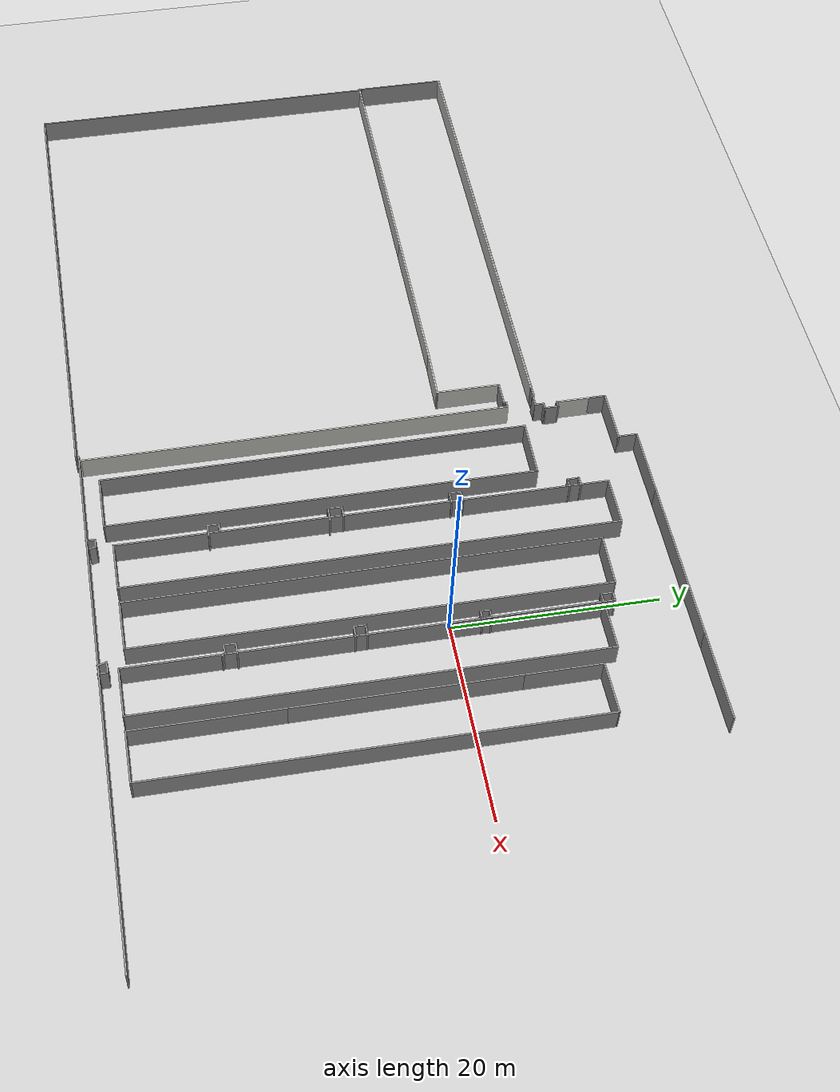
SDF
<sdf version="1.6">
 <world name="default">
  <model name="ground_plane">
   <static>1</static>
   <link name="link">
    <collision name="collision">
     <geometry><plane><normal>0 0 1</normal><size>100 100</size></plane></geometry>
     <surface><friction><ode><mu>100</mu><mu2>50</mu2></ode></friction></surface>
    </collision>
    <visual name="visual">
     <transparency>1</transparency>
     <cast_shadows>0</cast_shadows>
     <geometry><plane><normal>0 0 1</normal><size>100 100</size></plane></geometry>
     <material>
      <script><uri>file://media/materials/scripts/gazebo.material</uri><name>Gazebo/Grey</name></script>
     </material>
    </visual>
   </link>
  </model>
  <model name="AGV_smt">
   <pose>-16.0022 0.08637 0 0 -0 0</pose>
   <link name="Wall_0">
    <collision name="Wall_0_Collision">
     <geometry><box><size>30.75 0.15 2.5</size></box></geometry>
     <pose>0 0 1.25 0 -0 0</pose>
    </collision>
    <visual name="Wall_0_Visual">
     <pose>0 0 1.25 0 -0 0</pose>
     <geometry><box><size>30.75 0.15 2.5</size></box></geometry>
     <material>
      <script><uri>file://media/materials/scripts/gazebo.material</uri><name>Gazebo/Grey</name></script>
      <ambient>1 1 1 1</ambient>
     </material>
    </visual>
    <pose>-42.1422 13.3361 0 0 -0 0</pose>
   </link>
   <link name="Wall_1">
    <collision name="Wall_1_Collision">
     <geometry><box><size>0.15 0.15 2.5</size></box></geometry>
     <pose>0 0 1.25 0 -0 0</pose>
    </collision>
    <visual name="Wall_1_Visual">
     <pose>0 0 1.25 0 -0 0</pose>
     <geometry><box><size>0.15 0.15 2.5</size></box></geometry>
     <material>
      <script><uri>file://media/materials/scripts/gazebo.material</uri><name>Gazebo/Grey</name></script>
      <ambient>1 1 1 1</ambient>
     </material>
    </visual>
    <pose>-26.8422 13.3361 0 0 -0 0</pose>
   </link>
   <link name="Wall_106">
    <collision name="Wall_106_Collision">
     <geometry><box><size>5.25 0.15 2.5</size></box></geometry>
     <pose>0 0 1.25 0 -0 0</pose>
    </collision>
    <visual name="Wall_106_Visual">
     <pose>0 0 1.25 0 -0 0</pose>
     <geometry><box><size>5.25 0.15 2.5</size></box></geometry>
     <material>
      <script><uri>file://media/materials/scripts/gazebo.material</uri><name>Gazebo/Grey</name></script>
      <ambient>1 1 1 1</ambient>
     </material>
    </visual>
    <pose>26.0282 -30.5244 0 0 -0 3.14159</pose>
   </link>
   <link name="Wall_107">
    <collision name="Wall_107_Collision">
     <geometry><box><size>14.5 0.15 2.5</size></box></geometry>
     <pose>0 0 1.25 0 -0 0</pose>
    </collision>
    <visual name="Wall_107_Visual">
     <pose>0 0 1.25 0 -0 0</pose>
     <geometry><box><size>14.5 0.15 2.5</size></box></geometry>
     <material>
      <script><uri>file://media/materials/scripts/gazebo.material</uri><name>Gazebo/Grey</name></script>
      <ambient>1 1 1 1</ambient>
     </material>
    </visual>
    <pose>23.4782 -23.3494 0 0 -0 1.5708</pose>
   </link>
   <link name="Wall_108">
    <collision name="Wall_108_Collision">
     <geometry><box><size>21.5 0.15 2.5</size></box></geometry>
     <pose>0 0 1.25 0 -0 0</pose>
    </collision>
    <visual name="Wall_108_Visual">
     <pose>0 0 1.25 0 -0 0</pose>
     <geometry><box><size>21.5 0.15 2.5</size></box></geometry>
     <material>
      <script><uri>file://media/materials/scripts/gazebo.material</uri><name>Gazebo/Grey</name></script>
      <ambient>1 1 1 1</ambient>
     </material>
    </visual>
    <pose>23.4782 -5.49935 0 0 -0 1.5708</pose>
   </link>
   <link name="Wall_109">
    <collision name="Wall_109_Collision">
     <geometry><box><size>0.16 0.15 2.5</size></box></geometry>
     <pose>0 0 1.25 0 -0 0</pose>
    </collision>
    <visual name="Wall_109_Visual">
     <pose>0 0 1.25 0 -0 0</pose>
     <geometry><box><size>0.16 0.15 2.5</size></box></geometry>
     <material>
      <script><uri>file://media/materials/scripts/gazebo.material</uri><name>Gazebo/Grey</name></script>
      <ambient>1 1 1 1</ambient>
     </material>
    </visual>
    <pose>23.4832 5.17565 0 0 -0 0</pose>
   </link>
   <link name="Wall_11">
    <collision name="Wall_11_Collision">
     <geometry><box><size>0.75 0.15 2.5</size></box></geometry>
     <pose>0 0 1.25 0 -0 0</pose>
    </collision>
    <visual name="Wall_11_Visual">
     <pose>0 0 1.25 0 -0 0</pose>
     <geometry><box><size>0.75 0.15 2.5</size></box></geometry>
     <material>
      <script><uri>file://media/materials/scripts/gazebo.material</uri><name>Gazebo/Grey</name></script>
      <ambient>1 1 1 1</ambient>
     </material>
    </visual>
    <pose>-6.84217 15.4361 0 0 -0 3.14159</pose>
   </link>
   <link name="Wall_110">
    <collision name="Wall_110_Collision">
     <geometry><box><size>7.38165 0.15 2.5</size></box></geometry>
     <pose>0 0 1.25 0 -0 0</pose>
    </collision>
    <visual name="Wall_110_Visual">
     <pose>0 0 1.25 0 -0 0</pose>
     <geometry><box><size>7.38165 0.15 2.5</size></box></geometry>
     <material>
      <script><uri>file://media/materials/scripts/gazebo.material</uri><name>Gazebo/Grey</name></script>
      <ambient>1 1 1 1</ambient>
     </material>
    </visual>
    <pose>23.4882 8.79147 0 0 -0 1.5708</pose>
   </link>
   <link name="Wall_111">
    <collision name="Wall_111_Collision">
     <geometry><box><size>5.20841 0.15 2.5</size></box></geometry>
     <pose>0 0 1.25 0 -0 0</pose>
    </collision>
    <visual name="Wall_111_Visual">
     <pose>0 0 1.25 0 -0 0</pose>
     <geometry><box><size>5.20841 0.15 2.5</size></box></geometry>
     <material>
      <script><uri>file://media/materials/scripts/gazebo.material</uri><name>Gazebo/Grey</name></script>
      <ambient>1 1 1 1</ambient>
     </material>
    </visual>
    <pose>26.0173 12.4536 0 0 -0 0.010491</pose>
   </link>
   <link name="Wall_112">
    <collision name="Wall_112_Collision">
     <geometry><box><size>43.1317 0.15 2.5</size></box></geometry>
     <pose>0 0 1.25 0 -0 0</pose>
    </collision>
    <visual name="Wall_112_Visual">
     <pose>0 0 1.25 0 -0 0</pose>
     <geometry><box><size>43.1317 0.15 2.5</size></box></geometry>
     <material>
      <script><uri>file://media/materials/scripts/gazebo.material</uri><name>Gazebo/Grey</name></script>
      <ambient>1 1 1 1</ambient>
     </material>
    </visual>
    <pose>28.5596 -9.03046 0 0 0 -1.57018</pose>
   </link>
   <link name="Wall_115">
    <collision name="Wall_115_Collision">
     <geometry><box><size>5.25 0.15 2.5</size></box></geometry>
     <pose>0 0 1.25 0 -0 0</pose>
    </collision>
    <visual name="Wall_115_Visual">
     <pose>0 0 1.25 0 -0 0</pose>
     <geometry><box><size>5.25 0.15 2.5</size></box></geometry>
     <material>
      <script><uri>file://media/materials/scripts/gazebo.material</uri><name>Gazebo/Grey</name></script>
      <ambient>1 1 1 1</ambient>
     </material>
    </visual>
    <pose>19.4138 14.0435 0 0 -0 0</pose>
   </link>
   <link name="Wall_116">
    <collision name="Wall_116_Collision">
     <geometry><box><size>44.7152 0.15 2.5</size></box></geometry>
     <pose>0 0 1.25 0 -0 0</pose>
    </collision>
    <visual name="Wall_116_Visual">
     <pose>0 0 1.25 0 -0 0</pose>
     <geometry><box><size>44.7152 0.15 2.5</size></box></geometry>
     <material>
      <script><uri>file://media/materials/scripts/gazebo.material</uri><name>Gazebo/Grey</name></script>
      <ambient>1 1 1 1</ambient>
     </material>
    </visual>
    <pose>21.9638 -8.23909 0 0 0 -1.5708</pose>
   </link>
   <link name="Wall_117">
    <collision name="Wall_117_Collision">
     <geometry><box><size>5.09266 0.15 2.5</size></box></geometry>
     <pose>0 0 1.25 0 -0 0</pose>
    </collision>
    <visual name="Wall_117_Visual">
     <pose>0 0 1.25 0 -0 0</pose>
     <geometry><box><size>5.09266 0.15 2.5</size></box></geometry>
     <material>
      <script><uri>file://media/materials/scripts/gazebo.material</uri><name>Gazebo/Grey</name></script>
      <ambient>1 1 1 1</ambient>
     </material>
    </visual>
    <pose>19.4925 -30.5521 0 0 0 -3.13628</pose>
   </link>
   <link name="Wall_118">
    <collision name="Wall_118_Collision">
     <geometry><box><size>44.7152 0.15 2.5</size></box></geometry>
     <pose>0 0 1.25 0 -0 0</pose>
    </collision>
    <visual name="Wall_118_Visual">
     <pose>0 0 1.25 0 -0 0</pose>
     <geometry><box><size>44.7152 0.15 2.5</size></box></geometry>
     <material>
      <script><uri>file://media/materials/scripts/gazebo.material</uri><name>Gazebo/Grey</name></script>
      <ambient>1 1 1 1</ambient>
     </material>
    </visual>
    <pose>17.0179 -8.26533 0 0 -0 1.57094</pose>
   </link>
   <link name="Wall_12">
    <collision name="Wall_12_Collision">
     <geometry><box><size>3.5 0.15 2.5</size></box></geometry>
     <pose>0 0 1.25 0 -0 0</pose>
    </collision>
    <visual name="Wall_12_Visual">
     <pose>0 0 1.25 0 -0 0</pose>
     <geometry><box><size>3.5 0.15 2.5</size></box></geometry>
     <material>
      <script><uri>file://media/materials/scripts/gazebo.material</uri><name>Gazebo/CeilingTiled</name></script>
      <ambient>1 1 1 1</ambient>
     </material>
    </visual>
    <pose>-7.14217 17.1111 0 0 -0 1.5708</pose>
   </link>
   <link name="Wall_120">
    <collision name="Wall_120_Collision">
     <geometry><box><size>1.25 0.15 2.5</size></box></geometry>
     <pose>0 0 1.25 0 -0 0</pose>
    </collision>
    <visual name="Wall_120_Visual">
     <pose>0 0 1.25 0 -0 0</pose>
     <geometry><box><size>1.25 0.15 2.5</size></box></geometry>
     <material>
      <script><uri>file://media/materials/scripts/gazebo.material</uri><name>Gazebo/Grey</name></script>
      <ambient>1 1 1 1</ambient>
     </material>
    </visual>
    <pose>17.0146 14.5673 0 0 -0 1.5708</pose>
   </link>
   <link name="Wall_121">
    <collision name="Wall_121_Collision">
     <geometry><box><size>1 0.15 2.5</size></box></geometry>
     <pose>0 0 1.25 0 -0 0</pose>
    </collision>
    <visual name="Wall_121_Visual">
     <pose>0 0 1.25 0 -0 0</pose>
     <geometry><box><size>1 0.15 2.5</size></box></geometry>
     <material>
      <script><uri>file://media/materials/scripts/gazebo.material</uri><name>Gazebo/Grey</name></script>
      <ambient>1 1 1 1</ambient>
     </material>
    </visual>
    <pose>16.5896 15.1173 0 0 -0 3.14159</pose>
   </link>
   <link name="Wall_122">
    <collision name="Wall_122_Collision">
     <geometry><box><size>1.25 0.15 2.5</size></box></geometry>
     <pose>0 0 1.25 0 -0 0</pose>
    </collision>
    <visual name="Wall_122_Visual">
     <pose>0 0 1.25 0 -0 0</pose>
     <geometry><box><size>1.25 0.15 2.5</size></box></geometry>
     <material>
      <script><uri>file://media/materials/scripts/gazebo.material</uri><name>Gazebo/Grey</name></script>
      <ambient>1 1 1 1</ambient>
     </material>
    </visual>
    <pose>16.1646 14.5673 0 0 0 -1.5708</pose>
   </link>
   <link name="Wall_123">
    <collision name="Wall_123_Collision">
     <geometry><box><size>1 0.15 2.5</size></box></geometry>
     <pose>0 0 1.25 0 -0 0</pose>
    </collision>
    <visual name="Wall_123_Visual">
     <pose>0 0 1.25 0 -0 0</pose>
     <geometry><box><size>1 0.15 2.5</size></box></geometry>
     <material>
      <script><uri>file://media/materials/scripts/gazebo.material</uri><name>Gazebo/Grey</name></script>
      <ambient>1 1 1 1</ambient>
     </material>
    </visual>
    <pose>16.5896 14.0173 0 0 -0 0</pose>
   </link>
   <link name="Wall_125">
    <collision name="Wall_125_Collision">
     <geometry><box><size>1 0.15 2.5</size></box></geometry>
     <pose>0 0 1.25 0 -0 0</pose>
    </collision>
    <visual name="Wall_125_Visual">
     <pose>0 0 1.25 0 -0 0</pose>
     <geometry><box><size>1 0.15 2.5</size></box></geometry>
     <material>
      <script><uri>file://media/materials/scripts/gazebo.material</uri><name>Gazebo/Grey</name></script>
      <ambient>1 1 1 1</ambient>
     </material>
    </visual>
    <pose>16.6409 3.50389 0 0 -0 3.14159</pose>
   </link>
   <link name="Wall_126">
    <collision name="Wall_126_Collision">
     <geometry><box><size>1 0.15 2.5</size></box></geometry>
     <pose>0 0 1.25 0 -0 0</pose>
    </collision>
    <visual name="Wall_126_Visual">
     <pose>0 0 1.25 0 -0 0</pose>
     <geometry><box><size>1 0.15 2.5</size></box></geometry>
     <material>
      <script><uri>file://media/materials/scripts/gazebo.material</uri><name>Gazebo/Grey</name></script>
      <ambient>1 1 1 1</ambient>
     </material>
    </visual>
    <pose>16.2159 3.07889 0 0 0 -1.5708</pose>
   </link>
   <link name="Wall_127">
    <collision name="Wall_127_Collision">
     <geometry><box><size>1 0.15 2.5</size></box></geometry>
     <pose>0 0 1.25 0 -0 0</pose>
    </collision>
    <visual name="Wall_127_Visual">
     <pose>0 0 1.25 0 -0 0</pose>
     <geometry><box><size>1 0.15 2.5</size></box></geometry>
     <material>
      <script><uri>file://media/materials/scripts/gazebo.material</uri><name>Gazebo/Grey</name></script>
      <ambient>1 1 1 1</ambient>
     </material>
    </visual>
    <pose>16.6409 2.65389 0 0 -0 0</pose>
   </link>
   <link name="Wall_129">
    <collision name="Wall_129_Collision">
     <geometry><box><size>1.25 0.15 2.5</size></box></geometry>
     <pose>0 0 1.25 0 -0 0</pose>
    </collision>
    <visual name="Wall_129_Visual">
     <pose>0 0 1.25 0 -0 0</pose>
     <geometry><box><size>1.25 0.15 2.5</size></box></geometry>
     <material>
      <script><uri>file://media/materials/scripts/gazebo.material</uri><name>Gazebo/Grey</name></script>
      <ambient>1 1 1 1</ambient>
     </material>
    </visual>
    <pose>16.5293 -7.97039 0 0 -0 3.14159</pose>
   </link>
   <link name="Wall_130">
    <collision name="Wall_130_Collision">
     <geometry><box><size>1.25 0.15 2.5</size></box></geometry>
     <pose>0 0 1.25 0 -0 0</pose>
    </collision>
    <visual name="Wall_130_Visual">
     <pose>0 0 1.25 0 -0 0</pose>
     <geometry><box><size>1.25 0.15 2.5</size></box></geometry>
     <material>
      <script><uri>file://media/materials/scripts/gazebo.material</uri><name>Gazebo/Grey</name></script>
      <ambient>1 1 1 1</ambient>
     </material>
    </visual>
    <pose>15.9793 -8.52039 0 0 0 -1.5708</pose>
   </link>
   <link name="Wall_131">
    <collision name="Wall_131_Collision">
     <geometry><box><size>1.25 0.15 2.5</size></box></geometry>
     <pose>0 0 1.25 0 -0 0</pose>
    </collision>
    <visual name="Wall_131_Visual">
     <pose>0 0 1.25 0 -0 0</pose>
     <geometry><box><size>1.25 0.15 2.5</size></box></geometry>
     <material>
      <script><uri>file://media/materials/scripts/gazebo.material</uri><name>Gazebo/Grey</name></script>
      <ambient>1 1 1 1</ambient>
     </material>
    </visual>
    <pose>16.5293 -9.07039 0 0 -0 0</pose>
   </link>
   <link name="Wall_133">
    <collision name="Wall_133_Collision">
     <geometry><box><size>1.25 0.15 2.5</size></box></geometry>
     <pose>0 0 1.25 0 -0 0</pose>
    </collision>
    <visual name="Wall_133_Visual">
     <pose>0 0 1.25 0 -0 0</pose>
     <geometry><box><size>1.25 0.15 2.5</size></box></geometry>
     <material>
      <script><uri>file://media/materials/scripts/gazebo.material</uri><name>Gazebo/Grey</name></script>
      <ambient>1 1 1 1</ambient>
     </material>
    </visual>
    <pose>16.606 -19.8824 0 0 -0 3.14159</pose>
   </link>
   <link name="Wall_134">
    <collision name="Wall_134_Collision">
     <geometry><box><size>1.25 0.15 2.5</size></box></geometry>
     <pose>0 0 1.25 0 -0 0</pose>
    </collision>
    <visual name="Wall_134_Visual">
     <pose>0 0 1.25 0 -0 0</pose>
     <geometry><box><size>1.25 0.15 2.5</size></box></geometry>
     <material>
      <script><uri>file://media/materials/scripts/gazebo.material</uri><name>Gazebo/Grey</name></script>
      <ambient>1 1 1 1</ambient>
     </material>
    </visual>
    <pose>16.056 -20.4324 0 0 0 -1.5708</pose>
   </link>
   <link name="Wall_135">
    <collision name="Wall_135_Collision">
     <geometry><box><size>1 0.15 2.5</size></box></geometry>
     <pose>0 0 1.25 0 -0 0</pose>
    </collision>
    <visual name="Wall_135_Visual">
     <pose>0 0 1.25 0 -0 0</pose>
     <geometry><box><size>1 0.15 2.5</size></box></geometry>
     <material>
      <script><uri>file://media/materials/scripts/gazebo.material</uri><name>Gazebo/Grey</name></script>
      <ambient>1 1 1 1</ambient>
     </material>
    </visual>
    <pose>16.481 -20.9824 0 0 -0 0</pose>
   </link>
   <link name="Wall_136">
    <collision name="Wall_136_Collision">
     <geometry><box><size>0.5 0.15 2.5</size></box></geometry>
     <pose>0 0 1.25 0 -0 0</pose>
    </collision>
    <visual name="Wall_136_Visual">
     <pose>0 0 1.25 0 -0 0</pose>
     <geometry><box><size>0.5 0.15 2.5</size></box></geometry>
     <material>
      <script><uri>file://media/materials/scripts/gazebo.material</uri><name>Gazebo/Grey</name></script>
      <ambient>1 1 1 1</ambient>
     </material>
    </visual>
    <pose>17.0298 -21.1061 0 0 0 -0.785398</pose>
   </link>
   <link name="Wall_138">
    <collision name="Wall_138_Collision">
     <geometry><box><size>5.24416 0.15 2.5</size></box></geometry>
     <pose>0 0 1.25 0 -0 0</pose>
    </collision>
    <visual name="Wall_138_Visual">
     <pose>0 0 1.25 0 -0 0</pose>
     <geometry><box><size>5.24416 0.15 2.5</size></box></geometry>
     <material>
      <script><uri>file://media/materials/scripts/gazebo.material</uri><name>Gazebo/Grey</name></script>
      <ambient>1 1 1 1</ambient>
     </material>
    </visual>
    <pose>12.5085 15.6745 0 0 0 -0.02094</pose>
   </link>
   <link name="Wall_139">
    <collision name="Wall_139_Collision">
     <geometry><box><size>45.6529 0.15 2.5</size></box></geometry>
     <pose>0 0 1.25 0 -0 0</pose>
    </collision>
    <visual name="Wall_139_Visual">
     <pose>0 0 1.25 0 -0 0</pose>
     <geometry><box><size>45.6529 0.15 2.5</size></box></geometry>
     <material>
      <script><uri>file://media/materials/scripts/gazebo.material</uri><name>Gazebo/Grey</name></script>
      <ambient>1 1 1 1</ambient>
     </material>
    </visual>
    <pose>15.0467 -7.13023 0 0 0 -1.57116</pose>
   </link>
   <link name="Wall_14">
    <collision name="Wall_14_Collision">
     <geometry><box><size>1.75 0.15 2.5</size></box></geometry>
     <pose>0 0 1.25 0 -0 0</pose>
    </collision>
    <visual name="Wall_14_Visual">
     <pose>0 0 1.25 0 -0 0</pose>
     <geometry><box><size>1.75 0.15 2.5</size></box></geometry>
     <material>
      <script><uri>file://media/materials/scripts/gazebo.material</uri><name>Gazebo/Grey</name></script>
      <ambient>1 1 1 1</ambient>
     </material>
    </visual>
    <pose>-7.14217 19.5861 0 0 -0 1.5708</pose>
   </link>
   <link name="Wall_140">
    <collision name="Wall_140_Collision">
     <geometry><box><size>5.25 0.15 2.5</size></box></geometry>
     <pose>0 0 1.25 0 -0 0</pose>
    </collision>
    <visual name="Wall_140_Visual">
     <pose>0 0 1.25 0 -0 0</pose>
     <geometry><box><size>5.25 0.15 2.5</size></box></geometry>
     <material>
      <script><uri>file://media/materials/scripts/gazebo.material</uri><name>Gazebo/Grey</name></script>
      <ambient>1 1 1 1</ambient>
     </material>
    </visual>
    <pose>12.4884 -29.8817 0 0 -0 3.14159</pose>
   </link>
   <link name="Wall_141">
    <collision name="Wall_141_Collision">
     <geometry><box><size>45.75 0.15 2.5</size></box></geometry>
     <pose>0 0 1.25 0 -0 0</pose>
    </collision>
    <visual name="Wall_141_Visual">
     <pose>0 0 1.25 0 -0 0</pose>
     <geometry><box><size>45.75 0.15 2.5</size></box></geometry>
     <material>
      <script><uri>file://media/materials/scripts/gazebo.material</uri><name>Gazebo/Grey</name></script>
      <ambient>1 1 1 1</ambient>
     </material>
    </visual>
    <pose>9.93842 -7.07681 0 0 -0 1.5708</pose>
   </link>
   <link name="Wall_143">
    <collision name="Wall_143_Collision">
     <geometry><box><size>5.0499 0.15 2.5</size></box></geometry>
     <pose>0 0 1.25 0 -0 0</pose>
    </collision>
    <visual name="Wall_143_Visual">
     <pose>0 0 1.25 0 -0 0</pose>
     <geometry><box><size>5.0499 0.15 2.5</size></box></geometry>
     <material>
      <script><uri>file://media/materials/scripts/gazebo.material</uri><name>Gazebo/Grey</name></script>
      <ambient>1 1 1 1</ambient>
     </material>
    </visual>
    <pose>5.86336 18.025 0 0 -0 0</pose>
   </link>
   <link name="Wall_144">
    <collision name="Wall_144_Collision">
     <geometry><box><size>48.0563 0.15 2.5</size></box></geometry>
     <pose>0 0 1.25 0 -0 0</pose>
    </collision>
    <visual name="Wall_144_Visual">
     <pose>0 0 1.25 0 -0 0</pose>
     <geometry><box><size>48.0563 0.15 2.5</size></box></geometry>
     <material>
      <script><uri>file://media/materials/scripts/gazebo.material</uri><name>Gazebo/Grey</name></script>
      <ambient>1 1 1 1</ambient>
     </material>
    </visual>
    <pose>8.30876 -5.94292 0 0 0 -1.57099</pose>
   </link>
   <link name="Wall_145">
    <collision name="Wall_145_Collision">
     <geometry><box><size>5.0499 0.15 2.5</size></box></geometry>
     <pose>0 0 1.25 0 -0 0</pose>
    </collision>
    <visual name="Wall_145_Visual">
     <pose>0 0 1.25 0 -0 0</pose>
     <geometry><box><size>5.0499 0.15 2.5</size></box></geometry>
     <material>
      <script><uri>file://media/materials/scripts/gazebo.material</uri><name>Gazebo/Grey</name></script>
      <ambient>1 1 1 1</ambient>
     </material>
    </visual>
    <pose>5.85426 -29.9016 0 0 -0 3.14159</pose>
   </link>
   <link name="Wall_146">
    <collision name="Wall_146_Collision">
     <geometry><box><size>48.0563 0.15 2.5</size></box></geometry>
     <pose>0 0 1.25 0 -0 0</pose>
    </collision>
    <visual name="Wall_146_Visual">
     <pose>0 0 1.25 0 -0 0</pose>
     <geometry><box><size>48.0563 0.15 2.5</size></box></geometry>
     <material>
      <script><uri>file://media/materials/scripts/gazebo.material</uri><name>Gazebo/Grey</name></script>
      <ambient>1 1 1 1</ambient>
     </material>
    </visual>
    <pose>3.40886 -5.94292 0 0 -0 1.57061</pose>
   </link>
   <link name="Wall_148">
    <collision name="Wall_148_Collision">
     <geometry><box><size>1 0.15 2.5</size></box></geometry>
     <pose>0 0 1.25 0 -0 0</pose>
    </collision>
    <visual name="Wall_148_Visual">
     <pose>0 0 1.25 0 -0 0</pose>
     <geometry><box><size>1 0.15 2.5</size></box></geometry>
     <material>
      <script><uri>file://media/materials/scripts/gazebo.material</uri><name>Gazebo/Grey</name></script>
      <ambient>1 1 1 1</ambient>
     </material>
    </visual>
    <pose>3.04093 15.2638 0 0 -0 3.14159</pose>
   </link>
   <link name="Wall_149">
    <collision name="Wall_149_Collision">
     <geometry><box><size>1.25 0.15 2.5</size></box></geometry>
     <pose>0 0 1.25 0 -0 0</pose>
    </collision>
    <visual name="Wall_149_Visual">
     <pose>0 0 1.25 0 -0 0</pose>
     <geometry><box><size>1.25 0.15 2.5</size></box></geometry>
     <material>
      <script><uri>file://media/materials/scripts/gazebo.material</uri><name>Gazebo/Grey</name></script>
      <ambient>1 1 1 1</ambient>
     </material>
    </visual>
    <pose>2.61593 14.7138 0 0 0 -1.5708</pose>
   </link>
   <link name="Wall_15">
    <collision name="Wall_15_Collision">
     <geometry><box><size>5.5 0.15 2.5</size></box></geometry>
     <pose>0 0 1.25 0 -0 0</pose>
    </collision>
    <visual name="Wall_15_Visual">
     <pose>0 0 1.25 0 -0 0</pose>
     <geometry><box><size>5.5 0.15 2.5</size></box></geometry>
     <material>
      <script><uri>file://media/materials/scripts/gazebo.material</uri><name>Gazebo/Grey</name></script>
      <ambient>1 1 1 1</ambient>
     </material>
    </visual>
    <pose>-4.46717 20.3861 0 0 -0 0</pose>
   </link>
   <link name="Wall_150">
    <collision name="Wall_150_Collision">
     <geometry><box><size>1 0.15 2.5</size></box></geometry>
     <pose>0 0 1.25 0 -0 0</pose>
    </collision>
    <visual name="Wall_150_Visual">
     <pose>0 0 1.25 0 -0 0</pose>
     <geometry><box><size>1 0.15 2.5</size></box></geometry>
     <material>
      <script><uri>file://media/materials/scripts/gazebo.material</uri><name>Gazebo/Grey</name></script>
      <ambient>1 1 1 1</ambient>
     </material>
    </visual>
    <pose>3.04093 14.1638 0 0 -0 0</pose>
   </link>
   <link name="Wall_152">
    <collision name="Wall_152_Collision">
     <geometry><box><size>1.25 0.15 2.5</size></box></geometry>
     <pose>0 0 1.25 0 -0 0</pose>
    </collision>
    <visual name="Wall_152_Visual">
     <pose>0 0 1.25 0 -0 0</pose>
     <geometry><box><size>1.25 0.15 2.5</size></box></geometry>
     <material>
      <script><uri>file://media/materials/scripts/gazebo.material</uri><name>Gazebo/Grey</name></script>
      <ambient>1 1 1 1</ambient>
     </material>
    </visual>
    <pose>3.00565 3.62322 0 0 -0 3.14159</pose>
   </link>
   <link name="Wall_153">
    <collision name="Wall_153_Collision">
     <geometry><box><size>1.25 0.15 2.5</size></box></geometry>
     <pose>0 0 1.25 0 -0 0</pose>
    </collision>
    <visual name="Wall_153_Visual">
     <pose>0 0 1.25 0 -0 0</pose>
     <geometry><box><size>1.25 0.15 2.5</size></box></geometry>
     <material>
      <script><uri>file://media/materials/scripts/gazebo.material</uri><name>Gazebo/Grey</name></script>
      <ambient>1 1 1 1</ambient>
     </material>
    </visual>
    <pose>2.45565 3.07322 0 0 0 -1.5708</pose>
   </link>
   <link name="Wall_154">
    <collision name="Wall_154_Collision">
     <geometry><box><size>1.25 0.15 2.5</size></box></geometry>
     <pose>0 0 1.25 0 -0 0</pose>
    </collision>
    <visual name="Wall_154_Visual">
     <pose>0 0 1.25 0 -0 0</pose>
     <geometry><box><size>1.25 0.15 2.5</size></box></geometry>
     <material>
      <script><uri>file://media/materials/scripts/gazebo.material</uri><name>Gazebo/Grey</name></script>
      <ambient>1 1 1 1</ambient>
     </material>
    </visual>
    <pose>3.00565 2.52322 0 0 -0 0</pose>
   </link>
   <link name="Wall_156">
    <collision name="Wall_156_Collision">
     <geometry><box><size>1.25 0.15 2.5</size></box></geometry>
     <pose>0 0 1.25 0 -0 0</pose>
    </collision>
    <visual name="Wall_156_Visual">
     <pose>0 0 1.25 0 -0 0</pose>
     <geometry><box><size>1.25 0.15 2.5</size></box></geometry>
     <material>
      <script><uri>file://media/materials/scripts/gazebo.material</uri><name>Gazebo/Grey</name></script>
      <ambient>1 1 1 1</ambient>
     </material>
    </visual>
    <pose>2.927 -7.94972 0 0 -0 3.14159</pose>
   </link>
   <link name="Wall_157">
    <collision name="Wall_157_Collision">
     <geometry><box><size>1.5 0.15 2.5</size></box></geometry>
     <pose>0 0 1.25 0 -0 0</pose>
    </collision>
    <visual name="Wall_157_Visual">
     <pose>0 0 1.25 0 -0 0</pose>
     <geometry><box><size>1.5 0.15 2.5</size></box></geometry>
     <material>
      <script><uri>file://media/materials/scripts/gazebo.material</uri><name>Gazebo/Grey</name></script>
      <ambient>1 1 1 1</ambient>
     </material>
    </visual>
    <pose>2.377 -8.62472 0 0 0 -1.5708</pose>
   </link>
   <link name="Wall_158">
    <collision name="Wall_158_Collision">
     <geometry><box><size>1.5 0.15 2.5</size></box></geometry>
     <pose>0 0 1.25 0 -0 0</pose>
    </collision>
    <visual name="Wall_158_Visual">
     <pose>0 0 1.25 0 -0 0</pose>
     <geometry><box><size>1.5 0.15 2.5</size></box></geometry>
     <material>
      <script><uri>file://media/materials/scripts/gazebo.material</uri><name>Gazebo/Grey</name></script>
      <ambient>1 1 1 1</ambient>
     </material>
    </visual>
    <pose>3.052 -9.29972 0 0 -0 0</pose>
   </link>
   <link name="Wall_16">
    <collision name="Wall_16_Collision">
     <geometry><box><size>2 0.15 2.5</size></box></geometry>
     <pose>0 0 1.25 0 -0 0</pose>
    </collision>
    <visual name="Wall_16_Visual">
     <pose>0 0 1.25 0 -0 0</pose>
     <geometry><box><size>2 0.15 2.5</size></box></geometry>
     <material>
      <script><uri>file://media/materials/scripts/gazebo.material</uri><name>Gazebo/Grey</name></script>
      <ambient>1 1 1 1</ambient>
     </material>
    </visual>
    <pose>-1.79217 21.3111 0 0 -0 1.5708</pose>
   </link>
   <link name="Wall_160">
    <collision name="Wall_160_Collision">
     <geometry><box><size>1 0.15 2.5</size></box></geometry>
     <pose>0 0 1.25 0 -0 0</pose>
    </collision>
    <visual name="Wall_160_Visual">
     <pose>0 0 1.25 0 -0 0</pose>
     <geometry><box><size>1 0.15 2.5</size></box></geometry>
     <material>
      <script><uri>file://media/materials/scripts/gazebo.material</uri><name>Gazebo/Grey</name></script>
      <ambient>1 1 1 1</ambient>
     </material>
    </visual>
    <pose>2.95939 -19.7967 0 0 -0 3.14159</pose>
   </link>
   <link name="Wall_161">
    <collision name="Wall_161_Collision">
     <geometry><box><size>1.25 0.15 2.5</size></box></geometry>
     <pose>0 0 1.25 0 -0 0</pose>
    </collision>
    <visual name="Wall_161_Visual">
     <pose>0 0 1.25 0 -0 0</pose>
     <geometry><box><size>1.25 0.15 2.5</size></box></geometry>
     <material>
      <script><uri>file://media/materials/scripts/gazebo.material</uri><name>Gazebo/Grey</name></script>
      <ambient>1 1 1 1</ambient>
     </material>
    </visual>
    <pose>2.53438 -20.3467 0 0 0 -1.5708</pose>
   </link>
   <link name="Wall_162">
    <collision name="Wall_162_Collision">
     <geometry><box><size>1.25 0.15 2.5</size></box></geometry>
     <pose>0 0 1.25 0 -0 0</pose>
    </collision>
    <visual name="Wall_162_Visual">
     <pose>0 0 1.25 0 -0 0</pose>
     <geometry><box><size>1.25 0.15 2.5</size></box></geometry>
     <material>
      <script><uri>file://media/materials/scripts/gazebo.material</uri><name>Gazebo/Grey</name></script>
      <ambient>1 1 1 1</ambient>
     </material>
    </visual>
    <pose>3.08439 -20.8967 0 0 -0 0</pose>
   </link>
   <link name="Wall_166">
    <collision name="Wall_166_Collision">
     <geometry><box><size>5.86862 0.15 2.5</size></box></geometry>
     <pose>0 0 1.25 0 -0 0</pose>
    </collision>
    <visual name="Wall_166_Visual">
     <pose>0 0 1.25 0 -0 0</pose>
     <geometry><box><size>5.86862 0.15 2.5</size></box></geometry>
     <material>
      <script><uri>file://media/materials/scripts/gazebo.material</uri><name>Gazebo/Grey</name></script>
      <ambient>1 1 1 1</ambient>
     </material>
    </visual>
    <pose>-1.7875 11.534 0 0 0 -0.012572</pose>
   </link>
   <link name="Wall_167">
    <collision name="Wall_167_Collision">
     <geometry><box><size>42.2453 0.15 2.5</size></box></geometry>
     <pose>0 0 1.25 0 -0 0</pose>
    </collision>
    <visual name="Wall_167_Visual">
     <pose>0 0 1.25 0 -0 0</pose>
     <geometry><box><size>42.2453 0.15 2.5</size></box></geometry>
     <material>
      <script><uri>file://media/materials/scripts/gazebo.material</uri><name>Gazebo/Grey</name></script>
      <ambient>1 1 1 1</ambient>
     </material>
    </visual>
    <pose>1.06981 -9.54955 0 0 0 -1.57277</pose>
   </link>
   <link name="Wall_168">
    <collision name="Wall_168_Collision">
     <geometry><box><size>5.75 0.15 2.5</size></box></geometry>
     <pose>0 0 1.25 0 -0 0</pose>
    </collision>
    <visual name="Wall_168_Visual">
     <pose>0 0 1.25 0 -0 0</pose>
     <geometry><box><size>5.75 0.15 2.5</size></box></geometry>
     <material>
      <script><uri>file://media/materials/scripts/gazebo.material</uri><name>Gazebo/Grey</name></script>
      <ambient>1 1 1 1</ambient>
     </material>
    </visual>
    <pose>-1.77165 -30.5972 0 0 -0 3.14159</pose>
   </link>
   <link name="Wall_169">
    <collision name="Wall_169_Collision">
     <geometry><box><size>42.3582 0.15 2.5</size></box></geometry>
     <pose>0 0 1.25 0 -0 0</pose>
    </collision>
    <visual name="Wall_169_Visual">
     <pose>0 0 1.25 0 -0 0</pose>
     <geometry><box><size>42.3582 0.15 2.5</size></box></geometry>
     <material>
      <script><uri>file://media/materials/scripts/gazebo.material</uri><name>Gazebo/Grey</name></script>
      <ambient>1 1 1 1</ambient>
     </material>
    </visual>
    <pose>-4.59598 -9.52309 0 0 -0 1.57195</pose>
   </link>
   <link name="Wall_17">
    <collision name="Wall_17_Collision">
     <geometry><box><size>7.25 0.15 2.5</size></box></geometry>
     <pose>0 0 1.25 0 -0 0</pose>
    </collision>
    <visual name="Wall_17_Visual">
     <pose>0 0 1.25 0 -0 0</pose>
     <geometry><box><size>7.25 0.15 2.5</size></box></geometry>
     <material>
      <script><uri>file://media/materials/scripts/gazebo.material</uri><name>Gazebo/Grey</name></script>
      <ambient>1 1 1 1</ambient>
     </material>
    </visual>
    <pose>1.75783 22.2361 0 0 -0 0</pose>
   </link>
   <link name="Wall_171">
    <collision name="Wall_171_Collision">
     <geometry><box><size>53.5 0.15 2.5</size></box></geometry>
     <pose>0 0 1.25 0 -0 0</pose>
    </collision>
    <visual name="Wall_171_Visual">
     <pose>0 0 1.25 0 -0 0</pose>
     <geometry><box><size>53.5 0.15 2.5</size></box></geometry>
     <material>
      <script><uri>file://media/materials/scripts/gazebo.material</uri><name>Gazebo/Grey</name></script>
      <ambient>1 1 1 1</ambient>
     </material>
    </visual>
    <pose>18.8532 -32.3575 0 0 -0 0</pose>
   </link>
   <link name="Wall_19">
    <collision name="Wall_19_Collision">
     <geometry><box><size>16.75 0.15 2.5</size></box></geometry>
     <pose>0 0 1.25 0 -0 0</pose>
    </collision>
    <visual name="Wall_19_Visual">
     <pose>0 0 1.25 0 -0 0</pose>
     <geometry><box><size>16.75 0.15 2.5</size></box></geometry>
     <material>
      <script><uri>file://media/materials/scripts/gazebo.material</uri><name>Gazebo/Grey</name></script>
      <ambient>1 1 1 1</ambient>
     </material>
    </visual>
    <pose>13.6078 22.2361 0 0 -0 0</pose>
   </link>
   <link name="Wall_191">
    <collision name="Wall_191_Collision">
     <geometry><box><size>1 0.15 2.5</size></box></geometry>
     <pose>0 0 1.25 0 -0 0</pose>
    </collision>
    <visual name="Wall_191_Visual">
     <pose>0 0 1.25 0 -0 0</pose>
     <geometry><box><size>1 0.15 2.5</size></box></geometry>
     <material>
      <script><uri>file://media/materials/scripts/gazebo.material</uri><name>Gazebo/Grey</name></script>
      <ambient>1 1 1 1</ambient>
     </material>
    </visual>
    <pose>2.43712 -31.9615 0 0 -0 1.5708</pose>
   </link>
   <link name="Wall_192">
    <collision name="Wall_192_Collision">
     <geometry><box><size>1 0.15 2.5</size></box></geometry>
     <pose>0 0 1.25 0 -0 0</pose>
    </collision>
    <visual name="Wall_192_Visual">
     <pose>0 0 1.25 0 -0 0</pose>
     <geometry><box><size>1 0.15 2.5</size></box></geometry>
     <material>
      <script><uri>file://media/materials/scripts/gazebo.material</uri><name>Gazebo/Grey</name></script>
      <ambient>1 1 1 1</ambient>
     </material>
    </visual>
    <pose>2.86212 -31.5365 0 0 -0 0</pose>
   </link>
   <link name="Wall_193">
    <collision name="Wall_193_Collision">
     <geometry><box><size>0.75 0.15 2.5</size></box></geometry>
     <pose>0 0 1.25 0 -0 0</pose>
    </collision>
    <visual name="Wall_193_Visual">
     <pose>0 0 1.25 0 -0 0</pose>
     <geometry><box><size>0.75 0.15 2.5</size></box></geometry>
     <material>
      <script><uri>file://media/materials/scripts/gazebo.material</uri><name>Gazebo/Grey</name></script>
      <ambient>1 1 1 1</ambient>
     </material>
    </visual>
    <pose>3.36476 -31.8262 0 0 0 -1.309</pose>
   </link>
   <link name="Wall_195">
    <collision name="Wall_195_Collision">
     <geometry><box><size>1 0.15 2.5</size></box></geometry>
     <pose>0 0 1.25 0 -0 0</pose>
    </collision>
    <visual name="Wall_195_Visual">
     <pose>0 0 1.25 0 -0 0</pose>
     <geometry><box><size>1 0.15 2.5</size></box></geometry>
     <material>
      <script><uri>file://media/materials/scripts/gazebo.material</uri><name>Gazebo/Grey</name></script>
      <ambient>1 1 1 1</ambient>
     </material>
    </visual>
    <pose>16.2842 -31.9759 0 0 -0 1.8326</pose>
   </link>
   <link name="Wall_196">
    <collision name="Wall_196_Collision">
     <geometry><box><size>1.25 0.15 2.5</size></box></geometry>
     <pose>0 0 1.25 0 -0 0</pose>
    </collision>
    <visual name="Wall_196_Visual">
     <pose>0 0 1.25 0 -0 0</pose>
     <geometry><box><size>1.25 0.15 2.5</size></box></geometry>
     <material>
      <script><uri>file://media/materials/scripts/gazebo.material</uri><name>Gazebo/Grey</name></script>
      <ambient>1 1 1 1</ambient>
     </material>
    </visual>
    <pose>16.7242 -31.5654 0 0 -0 0</pose>
   </link>
   <link name="Wall_197">
    <collision name="Wall_197_Collision">
     <geometry><box><size>1 0.15 2.5</size></box></geometry>
     <pose>0 0 1.25 0 -0 0</pose>
    </collision>
    <visual name="Wall_197_Visual">
     <pose>0 0 1.25 0 -0 0</pose>
     <geometry><box><size>1 0.15 2.5</size></box></geometry>
     <material>
      <script><uri>file://media/materials/scripts/gazebo.material</uri><name>Gazebo/Grey</name></script>
      <ambient>1 1 1 1</ambient>
     </material>
    </visual>
    <pose>17.2742 -31.9904 0 0 0 -1.5708</pose>
   </link>
   <link name="Wall_203">
    <collision name="Wall_203_Collision">
     <geometry><box><size>42.6726 0.15 2.5</size></box></geometry>
     <pose>0 0 1.25 0 -0 0</pose>
    </collision>
    <visual name="Wall_203_Visual">
     <pose>0 0 1.25 0 -0 0</pose>
     <geometry><box><size>42.6726 0.15 2.5</size></box></geometry>
     <material>
      <script><uri>file://media/materials/scripts/gazebo.material</uri><name>Gazebo/CeilingTiled</name></script>
      <ambient>1 1 1 1</ambient>
     </material>
    </visual>
    <pose>-7.31861 -10.8476 0 0 -0 1.57034</pose>
   </link>
   <link name="Wall_205">
    <collision name="Wall_205_Collision">
     <geometry><box><size>0.75 0.15 2.5</size></box></geometry>
     <pose>0 0 1.25 0 -0 0</pose>
    </collision>
    <visual name="Wall_205_Visual">
     <pose>0 0 1.25 0 -0 0</pose>
     <geometry><box><size>0.75 0.15 2.5</size></box></geometry>
     <material>
      <script><uri>file://media/materials/scripts/gazebo.material</uri><name>Gazebo/Grey</name></script>
      <ambient>1 1 1 1</ambient>
     </material>
    </visual>
    <pose>-7.61538 10.4137 0 0 -0 3.14159</pose>
   </link>
   <link name="Wall_206">
    <collision name="Wall_206_Collision">
     <geometry><box><size>0.397759 0.15 2.5</size></box></geometry>
     <pose>0 0 1.25 0 -0 0</pose>
    </collision>
    <visual name="Wall_206_Visual">
     <pose>0 0 1.25 0 -0 0</pose>
     <geometry><box><size>0.397759 0.15 2.5</size></box></geometry>
     <material>
      <script><uri>file://media/materials/scripts/gazebo.material</uri><name>Gazebo/Grey</name></script>
      <ambient>1 1 1 1</ambient>
     </material>
    </visual>
    <pose>-7.90194 10.2906 0 0 0 -1.46204</pose>
   </link>
   <link name="Wall_207">
    <collision name="Wall_207_Collision">
     <geometry><box><size>2.57387 0.15 2.5</size></box></geometry>
     <pose>0 0 1.25 0 -0 0</pose>
    </collision>
    <visual name="Wall_207_Visual">
     <pose>0 0 1.25 0 -0 0</pose>
     <geometry><box><size>2.57387 0.15 2.5</size></box></geometry>
     <material>
      <script><uri>file://media/materials/scripts/gazebo.material</uri><name>Gazebo/Grey</name></script>
      <ambient>1 1 1 1</ambient>
     </material>
    </visual>
    <pose>-9.09396 10.18 0 0 -0 3.13651</pose>
   </link>
   <link name="Wall_208">
    <collision name="Wall_208_Collision">
     <geometry><box><size>6.5 0.15 2.5</size></box></geometry>
     <pose>0 0 1.25 0 -0 0</pose>
    </collision>
    <visual name="Wall_208_Visual">
     <pose>0 0 1.25 0 -0 0</pose>
     <geometry><box><size>6.5 0.15 2.5</size></box></geometry>
     <material>
      <script><uri>file://media/materials/scripts/gazebo.material</uri><name>Gazebo/CeilingTiled</name></script>
      <ambient>1 1 1 1</ambient>
     </material>
    </visual>
    <pose>-10.3059 7.00472 0 0 0 -1.5708</pose>
   </link>
   <link name="Wall_209">
    <collision name="Wall_209_Collision">
     <geometry><box><size>5.20316 0.15 2.5</size></box></geometry>
     <pose>0 0 1.25 0 -0 0</pose>
    </collision>
    <visual name="Wall_209_Visual">
     <pose>0 0 1.25 0 -0 0</pose>
     <geometry><box><size>5.20316 0.15 2.5</size></box></geometry>
     <material>
      <script><uri>file://media/materials/scripts/gazebo.material</uri><name>Gazebo/CeilingTiled</name></script>
      <ambient>1 1 1 1</ambient>
     </material>
    </visual>
    <pose>-12.8319 3.89127 0 0 -0 3.11978</pose>
   </link>
   <link name="Wall_21">
    <collision name="Wall_21_Collision">
     <geometry><box><size>9 0.15 2.5</size></box></geometry>
     <pose>0 0 1.25 0 -0 0</pose>
    </collision>
    <visual name="Wall_21_Visual">
     <pose>0 0 1.25 0 -0 0</pose>
     <geometry><box><size>9 0.15 2.5</size></box></geometry>
     <material>
      <script><uri>file://media/materials/scripts/gazebo.material</uri><name>Gazebo/Grey</name></script>
      <ambient>1 1 1 1</ambient>
     </material>
    </visual>
    <pose>26.3328 22.2361 0 0 -0 0</pose>
   </link>
   <link name="Wall_211">
    <collision name="Wall_211_Collision">
     <geometry><box><size>16.75 0.15 2.5</size></box></geometry>
     <pose>0 0 1.25 0 -0 0</pose>
    </collision>
    <visual name="Wall_211_Visual">
     <pose>0 0 1.25 0 -0 0</pose>
     <geometry><box><size>16.75 0.15 2.5</size></box></geometry>
     <material>
      <script><uri>file://media/materials/scripts/gazebo.material</uri><name>Gazebo/CeilingTiled</name></script>
      <ambient>1 1 1 1</ambient>
     </material>
    </visual>
    <pose>-23.6578 3.94638 0 0 -0 3.14159</pose>
   </link>
   <link name="Wall_212">
    <collision name="Wall_212_Collision">
     <geometry><box><size>25.75 0.15 2.5</size></box></geometry>
     <pose>0 0 1.25 0 -0 0</pose>
    </collision>
    <visual name="Wall_212_Visual">
     <pose>0 0 1.25 0 -0 0</pose>
     <geometry><box><size>25.75 0.15 2.5</size></box></geometry>
     <material>
      <script><uri>file://media/materials/scripts/gazebo.material</uri><name>Gazebo/CeilingTiled</name></script>
      <ambient>1 1 1 1</ambient>
     </material>
    </visual>
    <pose>-44.7578 3.94638 0 0 -0 3.14159</pose>
   </link>
   <link name="Wall_213">
    <collision name="Wall_213_Collision">
     <geometry><box><size>9.5 0.15 2.5</size></box></geometry>
     <pose>0 0 1.25 0 -0 0</pose>
    </collision>
    <visual name="Wall_213_Visual">
     <pose>0 0 1.25 0 -0 0</pose>
     <geometry><box><size>9.5 0.15 2.5</size></box></geometry>
     <material>
      <script><uri>file://media/materials/scripts/gazebo.material</uri><name>Gazebo/Grey</name></script>
      <ambient>1 1 1 1</ambient>
     </material>
    </visual>
    <pose>-57.5578 8.62138 0 0 -0 1.5708</pose>
   </link>
   <link name="Wall_214">
    <collision name="Wall_214_Collision">
     <geometry><box><size>48.25 0.15 2.5</size></box></geometry>
     <pose>0 0 1.25 0 -0 0</pose>
    </collision>
    <visual name="Wall_214_Visual">
     <pose>0 0 1.25 0 -0 0</pose>
     <geometry><box><size>48.25 0.15 2.5</size></box></geometry>
     <material>
      <script><uri>file://media/materials/scripts/gazebo.material</uri><name>Gazebo/CeilingTiled</name></script>
      <ambient>1 1 1 1</ambient>
     </material>
    </visual>
    <pose>-33.5078 13.2964 0 0 -0 0</pose>
   </link>
   <link name="Wall_216">
    <collision name="Wall_216_Collision">
     <geometry><box><size>49.5523 0.15 2.5</size></box></geometry>
     <pose>0 0 1.25 0 -0 0</pose>
    </collision>
    <visual name="Wall_216_Visual">
     <pose>0 0 1.25 0 -0 0</pose>
     <geometry><box><size>49.5523 0.15 2.5</size></box></geometry>
     <material>
      <script><uri>file://media/materials/scripts/gazebo.material</uri><name>Gazebo/Grey</name></script>
      <ambient>1 1 1 1</ambient>
     </material>
    </visual>
    <pose>-32.5905 -32.7104 0 0 0 -3.13877</pose>
   </link>
   <link name="Wall_217">
    <collision name="Wall_217_Collision">
     <geometry><box><size>37 0.15 2.5</size></box></geometry>
     <pose>0 0 1.25 0 -0 0</pose>
    </collision>
    <visual name="Wall_217_Visual">
     <pose>0 0 1.25 0 -0 0</pose>
     <geometry><box><size>37 0.15 2.5</size></box></geometry>
     <material>
      <script><uri>file://media/materials/scripts/gazebo.material</uri><name>Gazebo/Grey</name></script>
      <ambient>1 1 1 1</ambient>
     </material>
    </visual>
    <pose>-57.4311 -14.3552 0 0 -0 1.5708</pose>
   </link>
   <link name="Wall_3">
    <collision name="Wall_3_Collision">
     <geometry><box><size>18.75 0.15 2.5</size></box></geometry>
     <pose>0 0 1.25 0 -0 0</pose>
    </collision>
    <visual name="Wall_3_Visual">
     <pose>0 0 1.25 0 -0 0</pose>
     <geometry><box><size>18.75 0.15 2.5</size></box></geometry>
     <material>
      <script><uri>file://media/materials/scripts/gazebo.material</uri><name>Gazebo/Grey</name></script>
      <ambient>1 1 1 1</ambient>
     </material>
    </visual>
    <pose>-17.5422 13.3361 0 0 -0 0</pose>
   </link>
   <link name="Wall_4">
    <collision name="Wall_4_Collision">
     <geometry><box><size>0.25 0.15 2.5</size></box></geometry>
     <pose>0 0 1.25 0 -0 0</pose>
    </collision>
    <visual name="Wall_4_Visual">
     <pose>0 0 1.25 0 -0 0</pose>
     <geometry><box><size>0.25 0.15 2.5</size></box></geometry>
     <material>
      <script><uri>file://media/materials/scripts/gazebo.material</uri><name>Gazebo/Grey</name></script>
      <ambient>1 1 1 1</ambient>
     </material>
    </visual>
    <pose>-8.24217 13.2861 0 0 0 -1.5708</pose>
   </link>
   <link name="Wall_5">
    <collision name="Wall_5_Collision">
     <geometry><box><size>1.25 0.15 2.5</size></box></geometry>
     <pose>0 0 1.25 0 -0 0</pose>
    </collision>
    <visual name="Wall_5_Visual">
     <pose>0 0 1.25 0 -0 0</pose>
     <geometry><box><size>1.25 0.15 2.5</size></box></geometry>
     <material>
      <script><uri>file://media/materials/scripts/gazebo.material</uri><name>Gazebo/Grey</name></script>
      <ambient>1 1 1 1</ambient>
     </material>
    </visual>
    <pose>-7.69217 13.2361 0 0 -0 0</pose>
   </link>
   <link name="Wall_6">
    <collision name="Wall_6_Collision">
     <geometry><box><size>1 0.15 2.5</size></box></geometry>
     <pose>0 0 1.25 0 -0 0</pose>
    </collision>
    <visual name="Wall_6_Visual">
     <pose>0 0 1.25 0 -0 0</pose>
     <geometry><box><size>1 0.15 2.5</size></box></geometry>
     <material>
      <script><uri>file://media/materials/scripts/gazebo.material</uri><name>Gazebo/Grey</name></script>
      <ambient>1 1 1 1</ambient>
     </material>
    </visual>
    <pose>-7.14217 13.6611 0 0 -0 1.5708</pose>
   </link>
   <link name="Wall_7">
    <collision name="Wall_7_Collision">
     <geometry><box><size>0.75 0.15 2.5</size></box></geometry>
     <pose>0 0 1.25 0 -0 0</pose>
    </collision>
    <visual name="Wall_7_Visual">
     <pose>0 0 1.25 0 -0 0</pose>
     <geometry><box><size>0.75 0.15 2.5</size></box></geometry>
     <material>
      <script><uri>file://media/materials/scripts/gazebo.material</uri><name>Gazebo/Grey</name></script>
      <ambient>1 1 1 1</ambient>
     </material>
    </visual>
    <pose>-6.84217 14.0861 0 0 -0 0</pose>
   </link>
   <link name="Wall_8">
    <collision name="Wall_8_Collision">
     <geometry><box><size>1.5 0.15 2.5</size></box></geometry>
     <pose>0 0 1.25 0 -0 0</pose>
    </collision>
    <visual name="Wall_8_Visual">
     <pose>0 0 1.25 0 -0 0</pose>
     <geometry><box><size>1.5 0.15 2.5</size></box></geometry>
     <material>
      <script><uri>file://media/materials/scripts/gazebo.material</uri><name>Gazebo/Grey</name></script>
      <ambient>1 1 1 1</ambient>
     </material>
    </visual>
    <pose>-6.54217 14.7611 0 0 -0 1.5708</pose>
   </link>
   <static>1</static>
  </model>
 </world>
</sdf>
